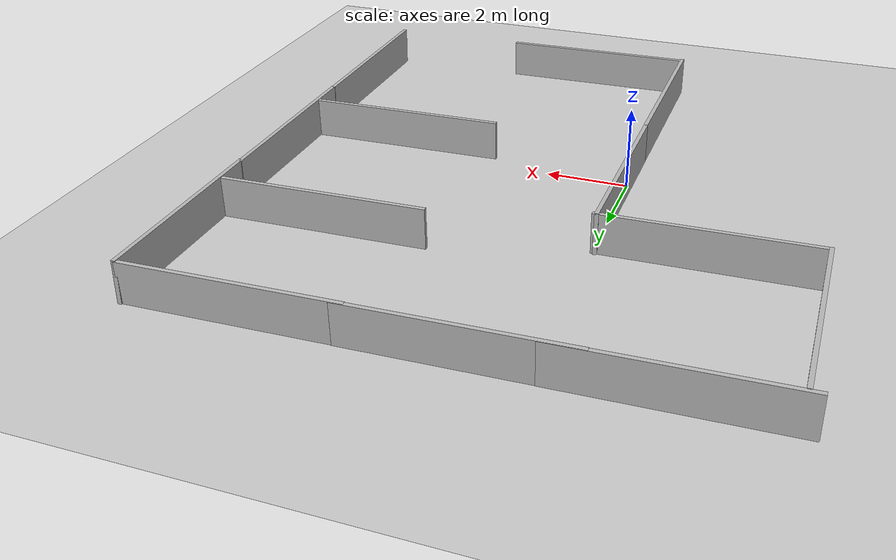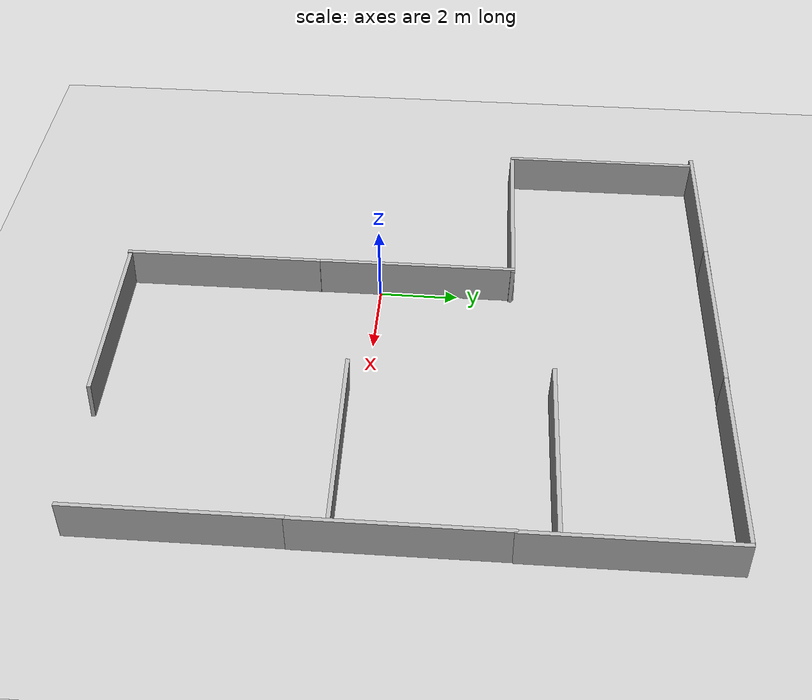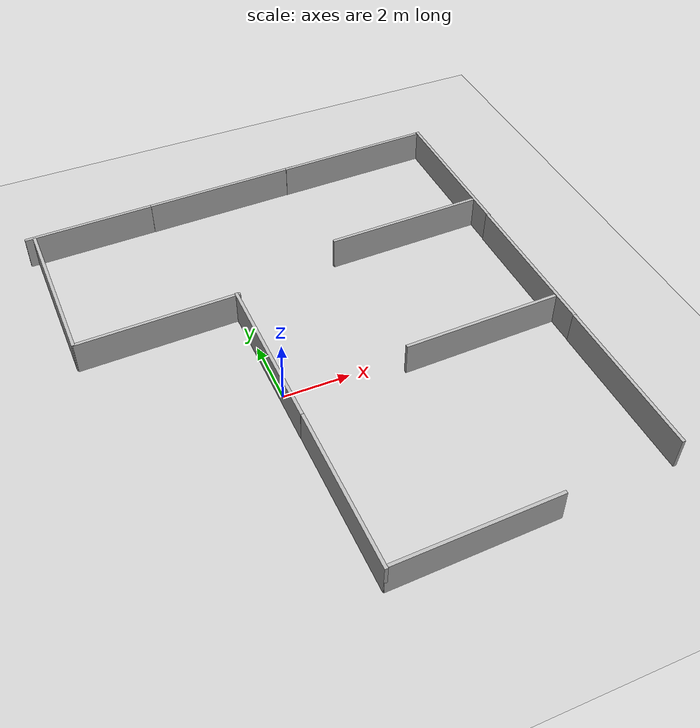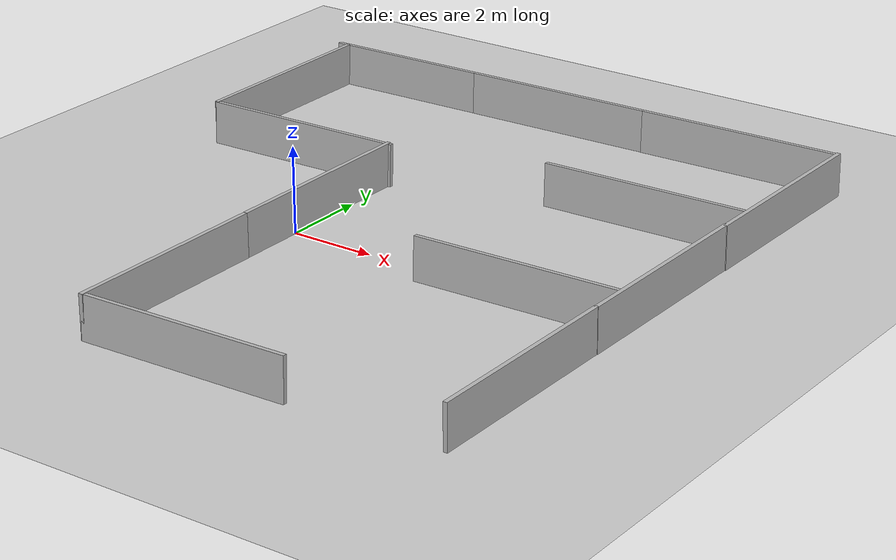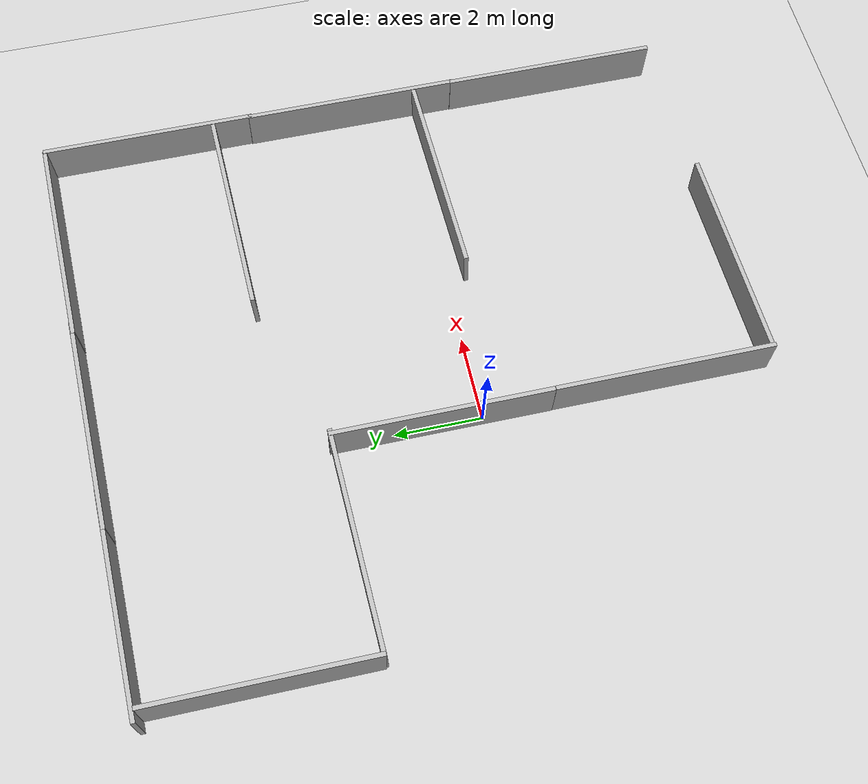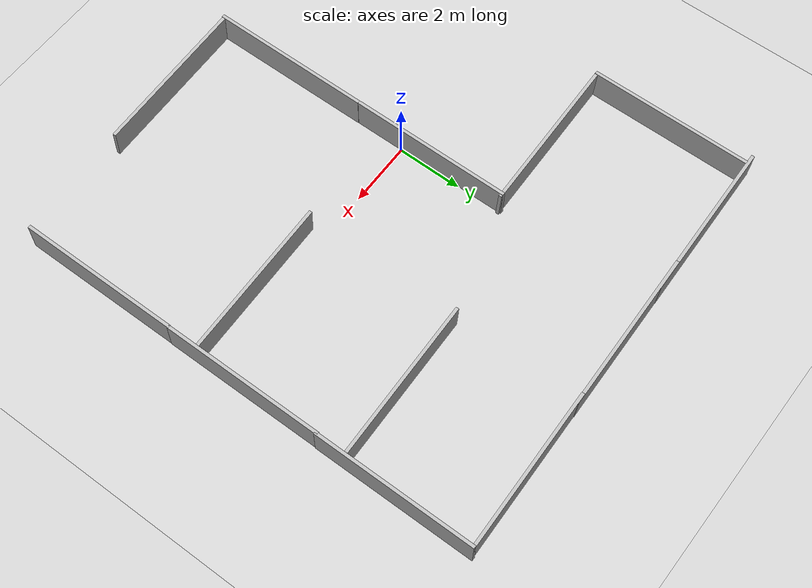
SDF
<sdf version="1.7">
 <world name="default">
  <light name="sun" type="directional">
   <pose>0 0 10 0 -0 0</pose>
   <diffuse>1 1 1 1</diffuse>
   <specular>1 1 1 1</specular>
   <attenuation>
    <range>1000</range>
    <constant>0.9</constant>
    <linear>0.01</linear>
    <quadratic>0.001</quadratic>
   </attenuation>
   <direction>-0.5 0.5 -1</direction>
   <spot><inner_angle>0</inner_angle><outer_angle>0</outer_angle><falloff>0</falloff></spot>
  </light>
  <model name="ground_plane">
   <static>1</static>
   <link name="link">
    <collision name="collision">
     <geometry><plane><normal>0 0 1</normal><size>500 500</size></plane></geometry>
     <surface><friction><ode><mu>100</mu><mu2>50</mu2></ode></friction></surface>
    </collision>
    <visual name="visual">
     <cast_shadows>0</cast_shadows>
     <geometry><plane><normal>0 0 1</normal><size>500 500</size></plane></geometry>
     <material>
      <script><uri>file://media/materials/scripts/gazebo.material</uri><name>Gazebo/Grey</name></script>
     </material>
    </visual>
   </link>
  </model>
  <gravity>0 0 -9.8</gravity>
  <magnetic_field>6e-06 2.3e-05 -4.2e-05</magnetic_field>
  <atmosphere type="adiabatic"/>
  <physics name="default_physics" default="0" type="ode">
   <max_step_size>0.001</max_step_size>
   <real_time_factor>1</real_time_factor>
   <real_time_update_rate>1000</real_time_update_rate>
  </physics>
  <scene><ambient>0.4 0.4 0.4 1</ambient><background>0.7 0.7 0.7 1</background><shadows>0</shadows></scene>
  <spherical_coordinates>
   <surface_model>EARTH_WGS84</surface_model>
   <latitude_deg>0</latitude_deg>
   <longitude_deg>0</longitude_deg>
   <elevation>0</elevation>
   <heading_deg>0</heading_deg>
  </spherical_coordinates>
  <model name="room_wall_2x5m">
   <link name="link">
    <visual name="visual">
     <geometry><box><size>0.1 5 2</size></box></geometry>
     <material>
      <script>
       <uri>https://fuel.ignitionrobotics.org/1.0/sebbyjp/models/room_wall_2x5m/1/files/material/script</uri>
       <uri>https://fuel.ignitionrobotics.org/1.0/sebbyjp/models/room_wall_2x5m/1/files/material/textures</uri>
       <name>Custom/room_wall_2x5m</name>
      </script>
     </material>
    </visual>
    <collision name="collision"><geometry><box><size>0.1 5 2</size></box></geometry></collision>
   </link>
   <static>1</static>
   <pose>-0.065408 -4.0515 0 0 -0 0</pose>
  </model>
  <model name="room_wall_2x5m_0">
   <link name="link">
    <visual name="visual">
     <geometry><box><size>0.1 5 2</size></box></geometry>
     <material>
      <script>
       <uri>https://fuel.ignitionrobotics.org/1.0/sebbyjp/models/room_wall_2x5m/1/files/material/script</uri>
       <uri>https://fuel.ignitionrobotics.org/1.0/sebbyjp/models/room_wall_2x5m/1/files/material/textures</uri>
       <name>Custom/room_wall_2x5m</name>
      </script>
     </material>
    </visual>
    <collision name="collision"><geometry><box><size>0.1 5 2</size></box></geometry></collision>
   </link>
   <static>1</static>
   <pose>-0.070538 0.952208 0 0 -0 0</pose>
  </model>
  <model name="room_wall_2x5m_clone">
   <link name="link">
    <visual name="visual">
     <geometry><box><size>0.1 5 2</size></box></geometry>
     <material>
      <script>
       <uri>https://fuel.ignitionrobotics.org/1.0/sebbyjp/models/room_wall_2x5m/1/files/material/script</uri>
       <uri>https://fuel.ignitionrobotics.org/1.0/sebbyjp/models/room_wall_2x5m/1/files/material/textures</uri>
       <name>Custom/room_wall_2x5m</name>
      </script>
     </material>
    </visual>
    <collision name="collision"><geometry><box><size>0.1 5 2</size></box></geometry></collision>
   </link>
   <static>1</static>
   <pose>2.4051 -6.45448 -0.013297 0.000963 0.037966 1.59615</pose>
  </model>
  <model name="room_wall_2x5m_clone_0">
   <link name="link">
    <visual name="visual">
     <geometry><box><size>0.1 5 2</size></box></geometry>
     <material>
      <script>
       <uri>https://fuel.ignitionrobotics.org/1.0/sebbyjp/models/room_wall_2x5m/1/files/material/script</uri>
       <uri>https://fuel.ignitionrobotics.org/1.0/sebbyjp/models/room_wall_2x5m/1/files/material/textures</uri>
       <name>Custom/room_wall_2x5m</name>
      </script>
     </material>
    </visual>
    <collision name="collision"><geometry><box><size>0.1 5 2</size></box></geometry></collision>
   </link>
   <static>1</static>
   <pose>8.4759 -3.73338 0 0 -0 0</pose>
  </model>
  <model name="room_wall_2x5m_clone_1">
   <link name="link">
    <visual name="visual">
     <geometry><box><size>0.1 5 2</size></box></geometry>
     <material>
      <script>
       <uri>https://fuel.ignitionrobotics.org/1.0/sebbyjp/models/room_wall_2x5m/1/files/material/script</uri>
       <uri>https://fuel.ignitionrobotics.org/1.0/sebbyjp/models/room_wall_2x5m/1/files/material/textures</uri>
       <name>Custom/room_wall_2x5m</name>
      </script>
     </material>
    </visual>
    <collision name="collision"><geometry><box><size>0.1 5 2</size></box></geometry></collision>
   </link>
   <static>1</static>
   <pose>8.48592 1.22526 0 0 -0 0</pose>
  </model>
  <model name="room_wall_2x5m_clone_2">
   <link name="link">
    <visual name="visual">
     <geometry><box><size>0.1 5 2</size></box></geometry>
     <material>
      <script>
       <uri>https://fuel.ignitionrobotics.org/1.0/sebbyjp/models/room_wall_2x5m/1/files/material/script</uri>
       <uri>https://fuel.ignitionrobotics.org/1.0/sebbyjp/models/room_wall_2x5m/1/files/material/textures</uri>
       <name>Custom/room_wall_2x5m</name>
      </script>
     </material>
    </visual>
    <collision name="collision"><geometry><box><size>0.1 5 2</size></box></geometry></collision>
   </link>
   <static>1</static>
   <pose>8.50245 6.13628 0 0 -0 0</pose>
  </model>
  <model name="room_wall_2x5m_clone_clone">
   <link name="link">
    <visual name="visual">
     <geometry><box><size>0.1 5 2</size></box></geometry>
     <material>
      <script>
       <uri>https://fuel.ignitionrobotics.org/1.0/sebbyjp/models/room_wall_2x5m/1/files/material/script</uri>
       <uri>https://fuel.ignitionrobotics.org/1.0/sebbyjp/models/room_wall_2x5m/1/files/material/textures</uri>
       <name>Custom/room_wall_2x5m</name>
      </script>
     </material>
    </visual>
    <collision name="collision"><geometry><box><size>0.1 5 2</size></box></geometry></collision>
   </link>
   <static>1</static>
   <pose>6.02486 -0.411702 -0.013297 0.000963 0.037966 1.59615</pose>
  </model>
  <model name="room_wall_2x5m_clone_clone_0">
   <link name="link">
    <visual name="visual">
     <geometry><box><size>0.1 5 2</size></box></geometry>
     <material>
      <script>
       <uri>https://fuel.ignitionrobotics.org/1.0/sebbyjp/models/room_wall_2x5m/1/files/material/script</uri>
       <uri>https://fuel.ignitionrobotics.org/1.0/sebbyjp/models/room_wall_2x5m/1/files/material/textures</uri>
       <name>Custom/room_wall_2x5m</name>
      </script>
     </material>
    </visual>
    <collision name="collision"><geometry><box><size>0.1 5 2</size></box></geometry></collision>
   </link>
   <static>1</static>
   <pose>5.9844 4.496 -0.013297 0.000963 0.037966 1.59615</pose>
  </model>
  <model name="room_wall_2x5m_clone_clone_1">
   <link name="link">
    <visual name="visual">
     <geometry><box><size>0.1 5 2</size></box></geometry>
     <material>
      <script>
       <uri>https://fuel.ignitionrobotics.org/1.0/sebbyjp/models/room_wall_2x5m/1/files/material/script</uri>
       <uri>https://fuel.ignitionrobotics.org/1.0/sebbyjp/models/room_wall_2x5m/1/files/material/textures</uri>
       <name>Custom/room_wall_2x5m</name>
      </script>
     </material>
    </visual>
    <collision name="collision"><geometry><box><size>0.1 5 2</size></box></geometry></collision>
   </link>
   <static>1</static>
   <pose>-2.46095 3.30382 -0.013297 0.000963 0.037966 1.59615</pose>
  </model>
  <model name="room_wall_2x5m_clone_clone_2">
   <link name="link">
    <visual name="visual">
     <geometry><box><size>0.1 5 2</size></box></geometry>
     <material>
      <script>
       <uri>https://fuel.ignitionrobotics.org/1.0/sebbyjp/models/room_wall_2x5m/1/files/material/script</uri>
       <uri>https://fuel.ignitionrobotics.org/1.0/sebbyjp/models/room_wall_2x5m/1/files/material/textures</uri>
       <name>Custom/room_wall_2x5m</name>
      </script>
     </material>
    </visual>
    <collision name="collision"><geometry><box><size>0.1 5 2</size></box></geometry></collision>
   </link>
   <static>1</static>
   <pose>6.00704 8.49929 -0.013297 0.000963 0.037966 1.59615</pose>
  </model>
  <model name="room_wall_2x5m_clone_clone_3">
   <link name="link">
    <visual name="visual">
     <geometry><box><size>0.1 5 2</size></box></geometry>
     <material>
      <script>
       <uri>https://fuel.ignitionrobotics.org/1.0/sebbyjp/models/room_wall_2x5m/1/files/material/script</uri>
       <uri>https://fuel.ignitionrobotics.org/1.0/sebbyjp/models/room_wall_2x5m/1/files/material/textures</uri>
       <name>Custom/room_wall_2x5m</name>
      </script>
     </material>
    </visual>
    <collision name="collision"><geometry><box><size>0.1 5 2</size></box></geometry></collision>
   </link>
   <static>1</static>
   <pose>1.31738 8.39053 -0.013297 0.000963 0.037966 1.59615</pose>
  </model>
  <model name="room_wall_2x5m_clone_clone_4">
   <link name="link">
    <visual name="visual">
     <geometry><box><size>0.1 5 2</size></box></geometry>
     <material>
      <script>
       <uri>https://fuel.ignitionrobotics.org/1.0/sebbyjp/models/room_wall_2x5m/1/files/material/script</uri>
       <uri>https://fuel.ignitionrobotics.org/1.0/sebbyjp/models/room_wall_2x5m/1/files/material/textures</uri>
       <name>Custom/room_wall_2x5m</name>
      </script>
     </material>
    </visual>
    <collision name="collision"><geometry><box><size>0.1 5 2</size></box></geometry></collision>
   </link>
   <static>1</static>
   <pose>-2.73382 8.29403 -0.013297 0.000963 0.037966 1.59615</pose>
  </model>
  <model name="room_wall_2x5m_0_clone">
   <link name="link">
    <visual name="visual">
     <geometry><box><size>0.1 5 2</size></box></geometry>
     <material>
      <script>
       <uri>https://fuel.ignitionrobotics.org/1.0/sebbyjp/models/room_wall_2x5m/1/files/material/script</uri>
       <uri>https://fuel.ignitionrobotics.org/1.0/sebbyjp/models/room_wall_2x5m/1/files/material/textures</uri>
       <name>Custom/room_wall_2x5m</name>
      </script>
     </material>
    </visual>
    <collision name="collision"><geometry><box><size>0.1 5 2</size></box></geometry></collision>
   </link>
   <static>1</static>
   <pose>-4.9418 5.73927 0 0 -0 0</pose>
  </model>
 </world>
</sdf>
